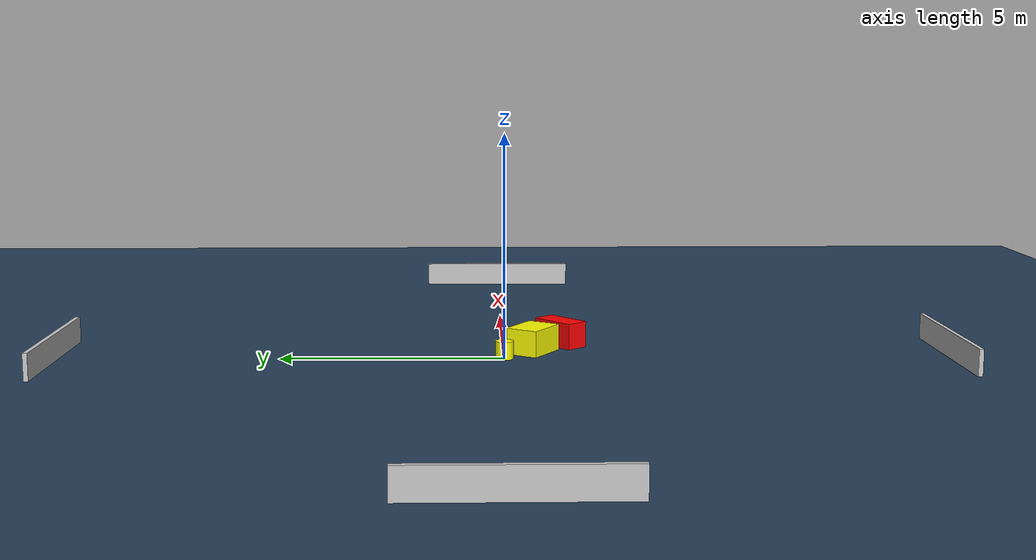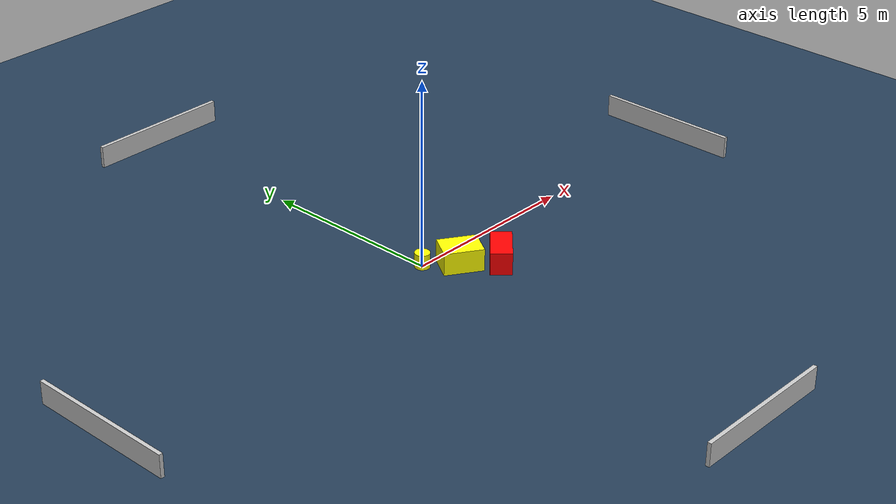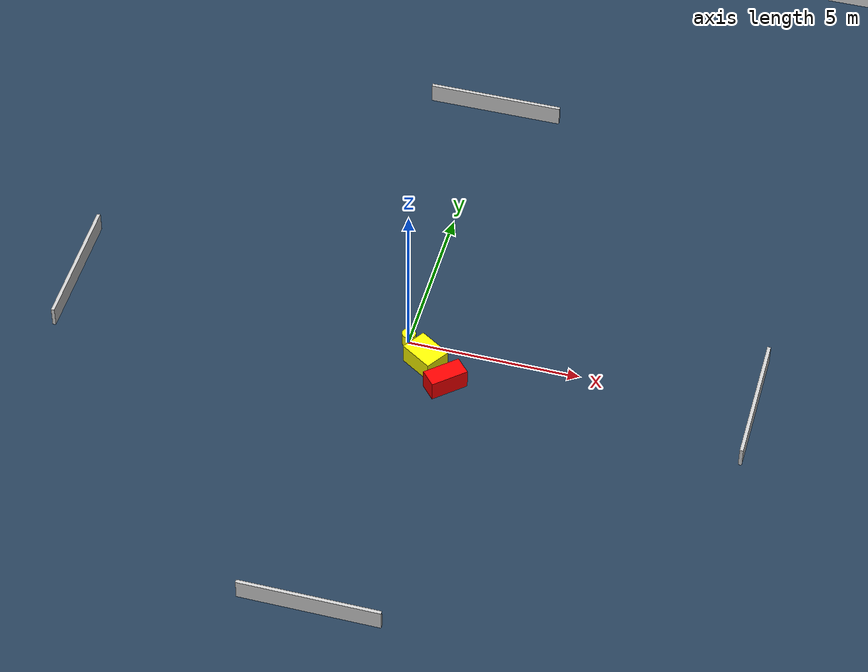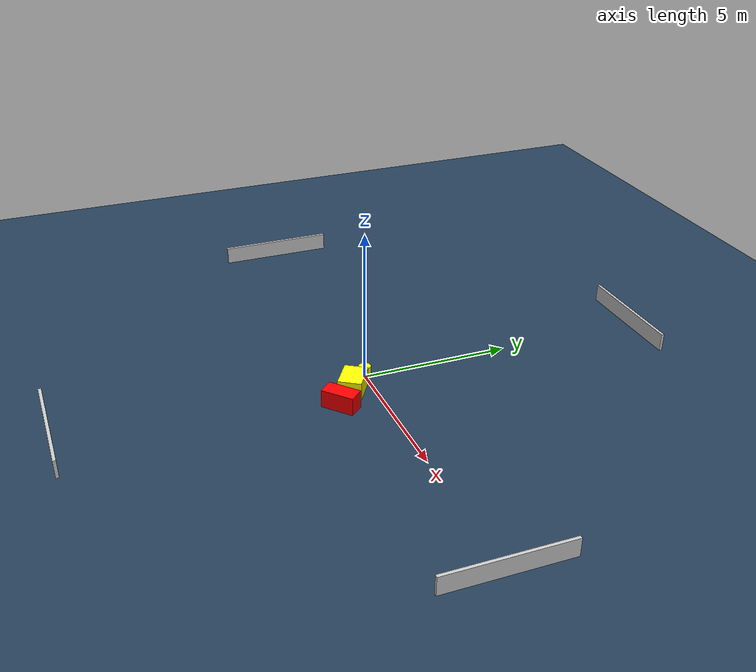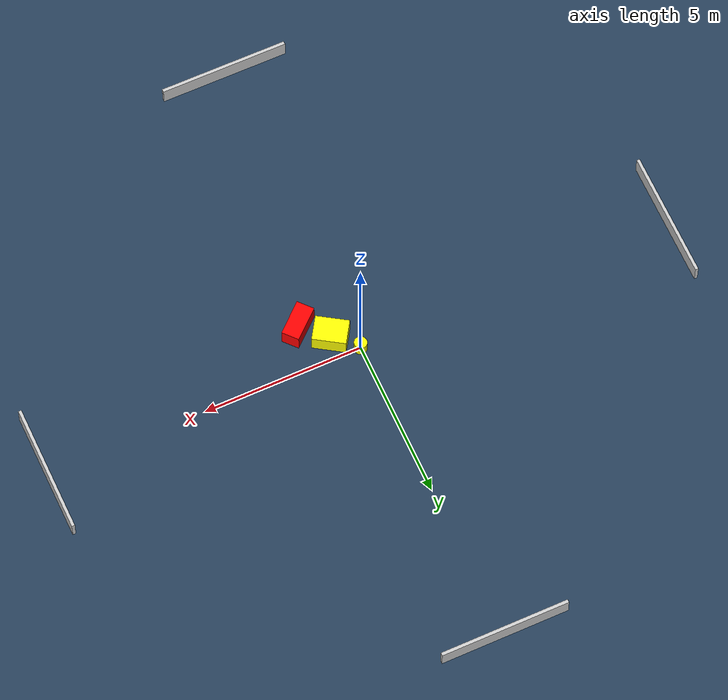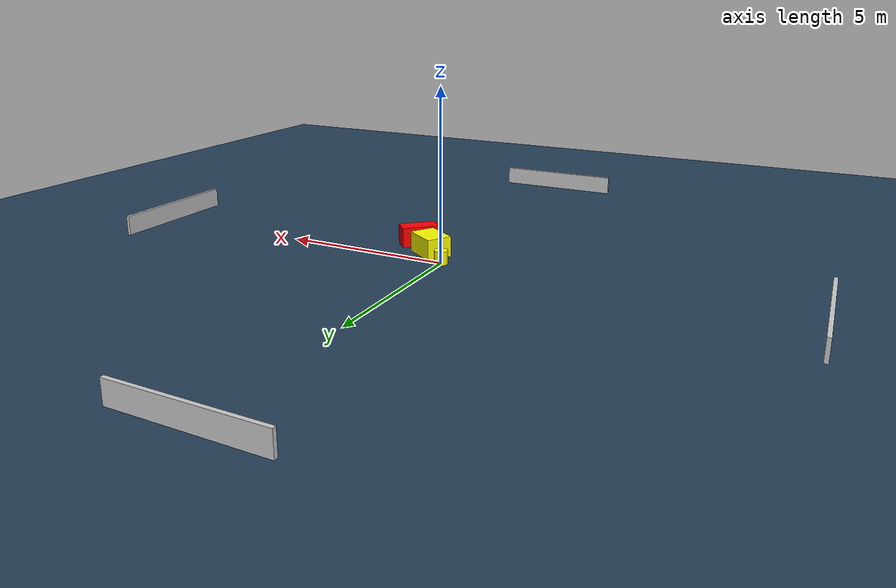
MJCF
<?xml version="1.0" ?>
<mujoco model="generated_environment">
  <option timestep="0.01" integrator="RK4" cone="elliptic"/>
  <default>
    <geom density="1"/>
  </default>
  <asset>
    <texture builtin="gradient" height="3072" name="skybox" rgb1="0.3 0.5 0.7" rgb2="0 0 0" type="skybox" width="512"/>
    <texture builtin="checker" height="300" name="groundplane" rgb1="0.2 0.3 0.4" rgb2="0.1 0.2 0.3" type="2d" width="300"/>
    <material name="groundplane" reflectance="0.2" texrepeat="5 5" texture="groundplane"/>
  </asset>
  <worldbody>
    <light dir="0 0 -1" directional="true" pos="0 0 1.5"/>
    <geom condim="3" friction="0.5 0.005 0.001" material="groundplane" name="floor" pos="0 0 0" size="0 0 0.05" type="plane"/>
    <body name="walls">
      <geom name="wall_1" condim="4" pos="-10.0 0.0 0.3" rgba="0.800000011920929 0.800000011920929 0.800000011920929 1.0" size="0.05 2.0 0.3" type="box"/>
      <geom name="wall_2" condim="4" pos="10.0 0.0 0.3" rgba="0.800000011920929 0.800000011920929 0.800000011920929 1.0" size="0.05 2.0 0.3" type="box"/>
      <geom name="wall_3" condim="4" pos="0.0 -10.0 0.3" rgba="0.800000011920929 0.800000011920929 0.800000011920929 1.0" size="2.0 0.05 0.3" type="box"/>
      <geom name="wall_4" condim="4" pos="0.0 10.0 0.3" rgba="0.800000011920929 0.800000011920929 0.800000011920929 1.0" size="2.0 0.05 0.3" type="box"/>
    </body>
    <body name="robot">
      <joint name="joint_x" type="slide" pos="0 0 0" axis="1 0 0"/>
      <joint name="joint_y" type="slide" pos="0 0 0" axis="0 1 0"/>
      <geom name="robot" type="cylinder" pos="0.0 0.0 0.2" size="0.2 0.2 0.0" mass="5.0" friction="1.0 0.005 0.0001" condim="4" rgba="1.0 1.0 0.0 1.0"/>
    </body>
    <body name="obstacle_1_movable">
      <geom name="obstacle_1_movable" condim="4" pos="0.667438214018744 -0.657384021960863 0.3" euler="0 0 147.24141358492923" friction="0.0 0.005 0.001" rgba="1.0 1.0 0.0 1.0" size="0.5163439860451011 0.38524975556551433 0.3" type="box" mass="0.1"/>
      <joint type="free"/>
    </body>
    <body name="obstacle_2_static">
      <geom name="obstacle_2_static" condim="4" pos="1.4244190764384017 -1.330665303295554 0.3" euler="0 0 41.74972481132325" friction="0.0 0.005 0.001" rgba="1.0 0.0 0.0 1.0" size="0.5554584782106549 0.27664533790244344 0.3" type="box"/>
    </body>
  </worldbody>
  <actuator>
    <motor name="actuator_x" joint="joint_x" gear="1" ctrlrange="-1 1"/>
    <motor name="actuator_y" joint="joint_y" gear="1" ctrlrange="-1 1"/>
  </actuator>
</mujoco>
